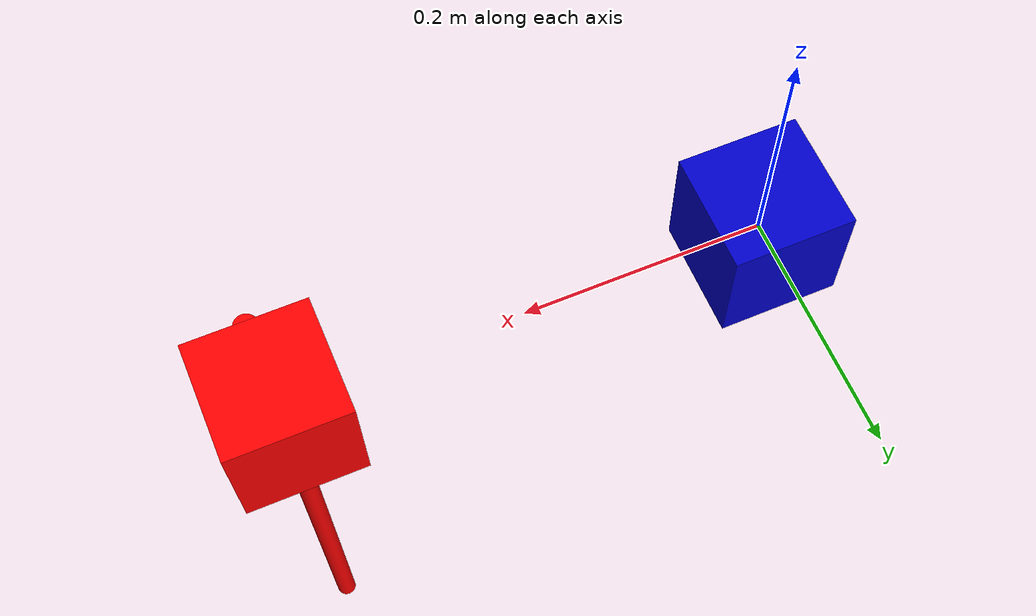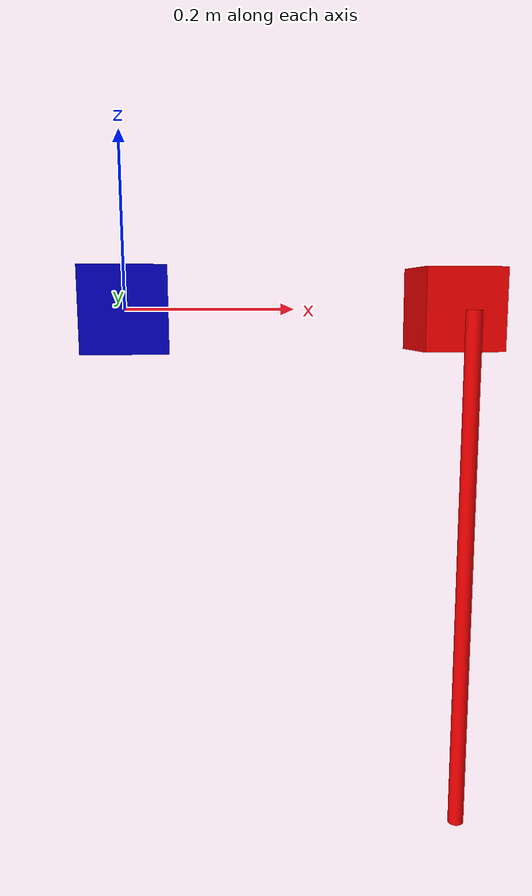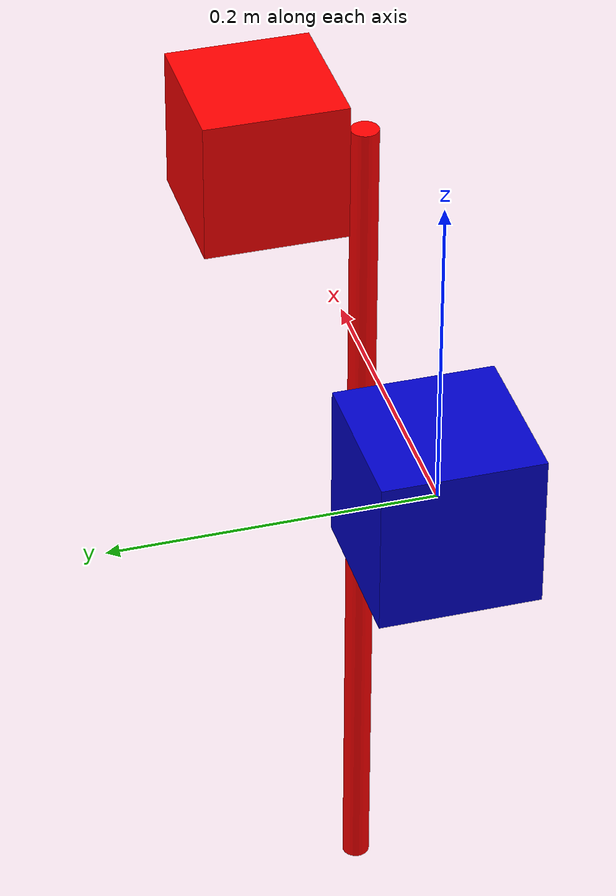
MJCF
<mujoco model="cart">
    <compiler angle="radian" />
    <size njmax="500" nconmax="100" />
    <option timestep="0.01" />

    <asset>
        <texture type="skybox" builtin="gradient" rgb1=".3 .5 .7" rgb2="0 0 0" width="32" height="512"/>
        <texture name="grid" type="2d" builtin="checker" width="512" height="512" rgb1=".1 .2 .3" rgb2=".2 .3 .4"/>
        <material name="grid" texture="grid" texrepeat="1 1" texuniform="true" reflectance=".2"/>
    </asset>

	<actuator>
		<motor gear="1.0" joint="cart1" name="cart1" ctrllimited="true" ctrlrange="-20. 20."/>
	</actuator>

    <worldbody>
        <body name="cart1" pos="0 0 0.">

            <geom mass="0.495" condim='1' size="0.05 0.05 0.05" type="box" rgba="0 0 0.8 1" />
            <joint type='slide' name='cart1' pos='0 0 0' axis="1 0 0" limited="false" range="-1.5 1.5"/>
            <body name="cart2" pos="0.4 0 0.0">
                <joint name="cart2" pos="0 0 0.0" axis="1 0 0" type='slide' stiffness="200.0" damping="10.0" />
                <geom mass='0.537' size="0.05 0.05 0.05" type="box" rgba="1 0 0 1" />
                <body name="pend" pos="0.0 -0.075 -0.325">
                    <joint name="pend" pos="0 0 0.325" axis="0 1 0" type='hinge' stiffness='0.' damping='0.' />
                    <geom mass='0.537' size="0.01 0.325" type="cylinder" rgba="1 0 0 1" />
                </body>
            </body>
        </body>

    </worldbody>

</mujoco>
